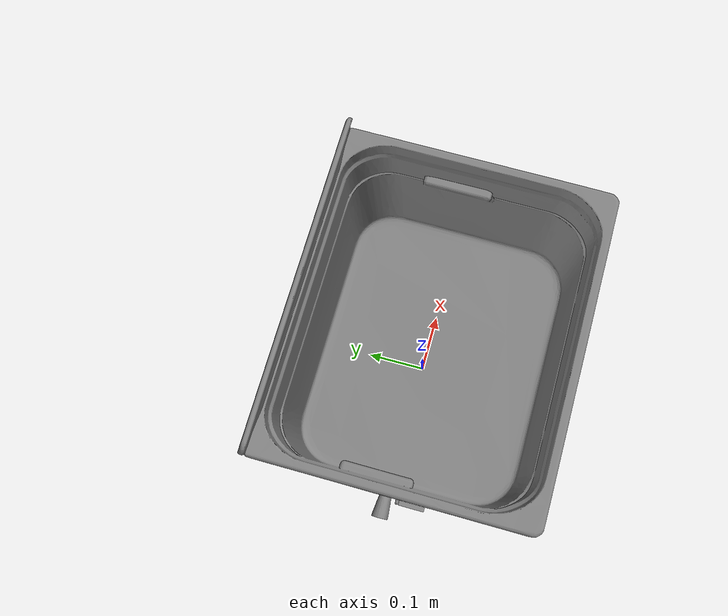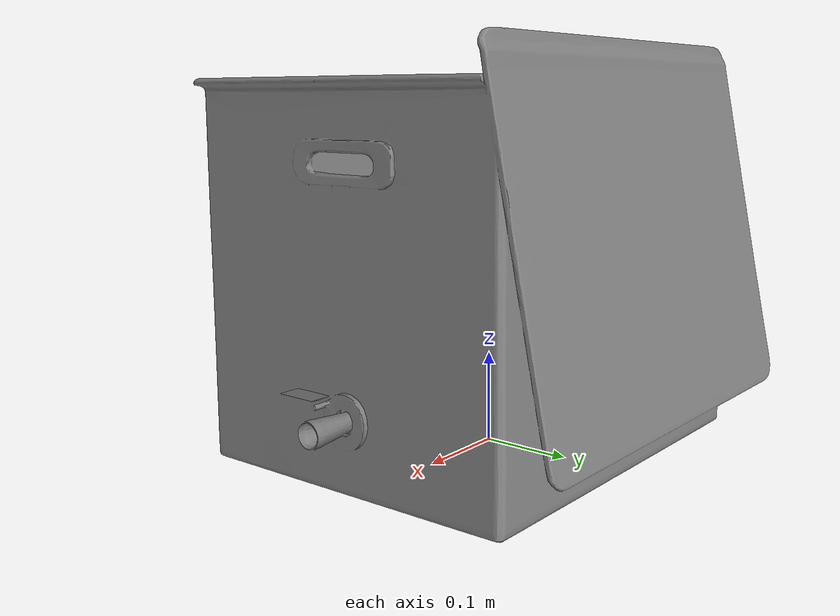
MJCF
<mujoco model="Cleaner">
  <!-- XML 位于 model/object，需要返回到 assets -->
  <compiler angle="radian" meshdir="../../assets"/>

  <option gravity="0 0 -9.81"/>

  <asset>
    <!-- 主 mesh -->
    <mesh
      name="cleaner_mesh"
      file="Cleaner/base.obj"
      scale="0.3 0.3 0.3"/>
  </asset>

  <worldbody>
    <body name="cleaner" quat="0.7071 0.7071 0 0">

      <!-- 视觉几何（不参与碰撞） -->
      <geom
        name="cleaner_visual"
        type="mesh"
        mesh="cleaner_mesh"
        contype="0"
        conaffinity="0"/>

      <!-- 碰撞几何（用于交互 / 放置） -->

      <geom name="box_1"
        type="box"
        density="7500"
        size="0.225 0.085 0.189"
        pos="-0 0.085 0.02"
        contype="1"
        conaffinity="1"
        friction="1.0 0.3 0.001"
        rgba="0 0 0 0"/>
      <geom name="box_2"
        type="box"
        density="7500"
        size="0.225 0.115 0.01"
        pos="0 0.285 0.2"
        contype="1"
        conaffinity="1"
        friction="1.0 0.3 0.001"
        rgba="0 0 0 0"/>
      <geom name="box_3"
        type="box"
        density="7500"
        size="0.225 0.115 0.01"
        pos="0 0.285 -0.18"
        contype="1"
        conaffinity="1"
        friction="1.0 0.3 0.001"
        rgba="0 0 0 0"/>
      <geom name="box_4"
          type="box"
          density="7500"
          size="0.01 0.115 0.18"
          pos="0.22 0.285 0.015"
          contype="1"
          conaffinity="1"
          friction="1.0 0.3 0.001"
          rgba="0 0 0 0"/>
      <geom name="box_5"
          type="box"
          density="7500"
          size="0.01 0.115 0.18"
          pos="-0.22 0.285 0.015"
          contype="1"
          conaffinity="1"
          friction="1.0 0.3 0.001"
          rgba="0 0 0 0"/>

    </body>
  </worldbody>
</mujoco>
